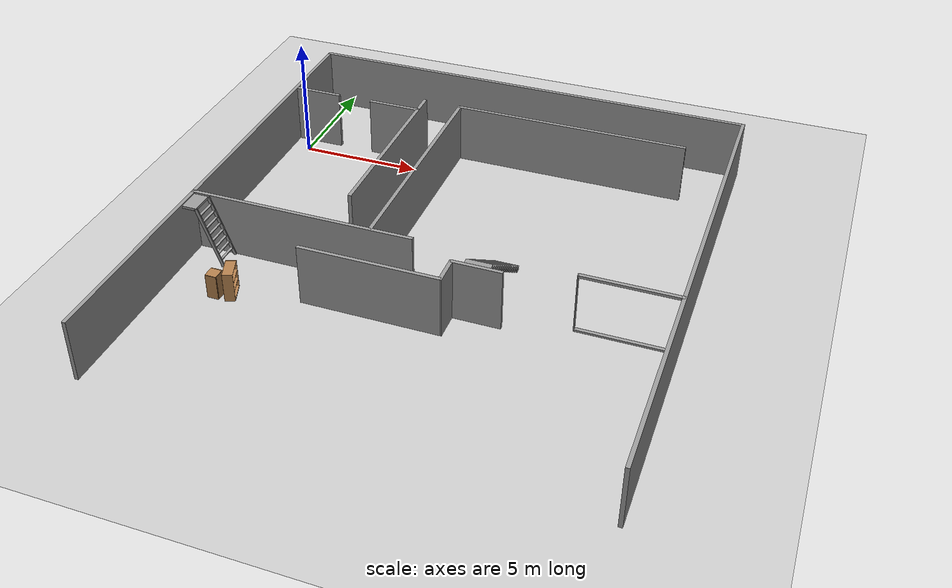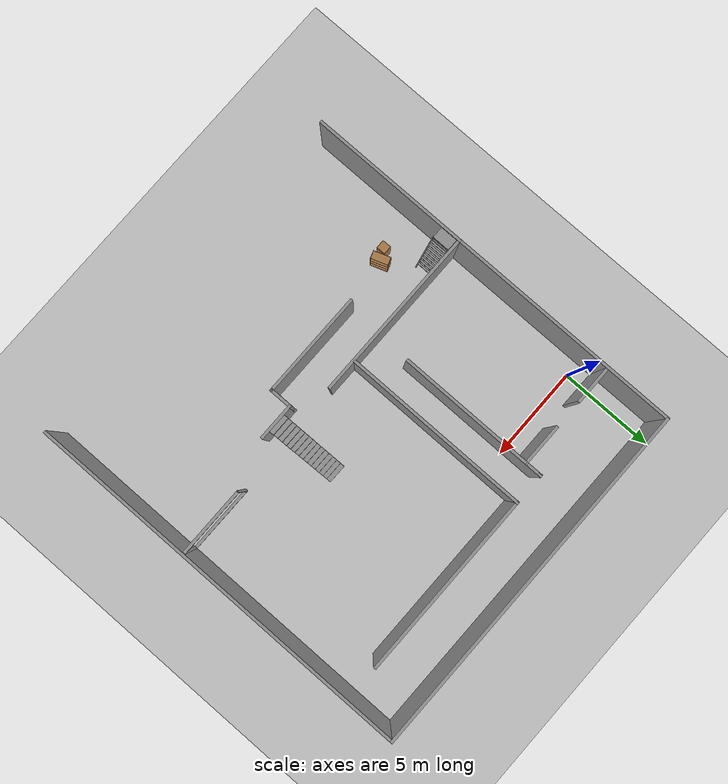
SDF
<sdf version="1.6">
 <world name="default">
  <light name="sun" type="directional">
   <pose>0 0 10 0 -0 0</pose>
   <diffuse>0.8 0.8 0.8 1</diffuse>
   <specular>0.2 0.2 0.2 1</specular>
   <attenuation>
    <range>1000</range>
    <constant>0.9</constant>
    <linear>0.01</linear>
    <quadratic>0.001</quadratic>
   </attenuation>
   <direction>-0.5 0.1 -0.9</direction>
  </light>
  <model name="ground_plane">
   <static>1</static>
   <link name="link">
    <collision name="collision">
     <geometry><plane><normal>0 0 1</normal><size>100 100</size></plane></geometry>
     <surface><friction><ode><mu>100</mu><mu2>50</mu2></ode></friction></surface>
    </collision>
    <visual name="visual">
     <cast_shadows>0</cast_shadows>
     <geometry><plane><normal>0 0 1</normal><size>100 100</size></plane></geometry>
     <material>
      <script><uri>file://media/materials/scripts/gazebo.material</uri><name>Gazebo/Grey</name></script>
     </material>
    </visual>
   </link>
  </model>
  <gravity>0 0 -9.8</gravity>
  <magnetic_field>6e-06 2.3e-05 -4.2e-05</magnetic_field>
  <atmosphere type="adiabatic"/>
  <physics name="default_physics" default="0" type="ode">
   <max_step_size>0.001</max_step_size>
   <real_time_factor>1</real_time_factor>
   <real_time_update_rate>1000</real_time_update_rate>
  </physics>
  <scene><ambient>0.4 0.4 0.4 1</ambient><background>0.7 0.7 0.7 1</background><shadows>1</shadows></scene>
  <audio><device>default</device></audio>
  <spherical_coordinates>
   <surface_model>EARTH_WGS84</surface_model>
   <latitude_deg>0</latitude_deg>
   <longitude_deg>0</longitude_deg>
   <elevation>0</elevation>
   <heading_deg>0</heading_deg>
  </spherical_coordinates>
  <model name="me5413_hope_ending_2">
   <pose>8.58971 -6.00914 0 0 -0 0</pose>
   <link name="Stairs_0">
    <visual name="Stairs_0_Visual_0">
     <pose>2.28032 0.665501 0.083333 0 -0 0</pose>
     <geometry><box><size>1 0.233333 0.166667</size></box></geometry>
     <material>
      <script><uri>file://media/materials/scripts/gazebo.material</uri><name>Gazebo/Grey</name></script>
      <ambient>1 1 1 1</ambient>
     </material>
     <meta><layer>0</layer></meta>
    </visual>
    <collision name="Stairs_0_Collision_0">
     <geometry><box><size>1 0.233333 0.166667</size></box></geometry>
     <pose>2.28032 0.665501 0.083333 0 -0 0</pose>
    </collision>
    <visual name="Stairs_0_Visual_1">
     <pose>2.28032 0.432168 0.25 0 -0 0</pose>
     <geometry><box><size>1 0.233333 0.166667</size></box></geometry>
     <material>
      <script><uri>file://media/materials/scripts/gazebo.material</uri><name>Gazebo/Grey</name></script>
      <ambient>1 1 1 1</ambient>
     </material>
     <meta><layer>0</layer></meta>
    </visual>
    <collision name="Stairs_0_Collision_1">
     <geometry><box><size>1 0.233333 0.166667</size></box></geometry>
     <pose>2.28032 0.432168 0.25 0 -0 0</pose>
    </collision>
    <visual name="Stairs_0_Visual_2">
     <pose>2.28032 0.198834 0.416667 0 -0 0</pose>
     <geometry><box><size>1 0.233333 0.166667</size></box></geometry>
     <material>
      <script><uri>file://media/materials/scripts/gazebo.material</uri><name>Gazebo/Grey</name></script>
      <ambient>1 1 1 1</ambient>
     </material>
     <meta><layer>0</layer></meta>
    </visual>
    <collision name="Stairs_0_Collision_2">
     <geometry><box><size>1 0.233333 0.166667</size></box></geometry>
     <pose>2.28032 0.198834 0.416667 0 -0 0</pose>
    </collision>
    <visual name="Stairs_0_Visual_3">
     <pose>2.28032 -0.034499 0.583333 0 -0 0</pose>
     <geometry><box><size>1 0.233333 0.166667</size></box></geometry>
     <material>
      <script><uri>file://media/materials/scripts/gazebo.material</uri><name>Gazebo/Grey</name></script>
      <ambient>1 1 1 1</ambient>
     </material>
     <meta><layer>0</layer></meta>
    </visual>
    <collision name="Stairs_0_Collision_3">
     <geometry><box><size>1 0.233333 0.166667</size></box></geometry>
     <pose>2.28032 -0.034499 0.583333 0 -0 0</pose>
    </collision>
    <visual name="Stairs_0_Visual_4">
     <pose>2.28032 -0.267833 0.75 0 -0 0</pose>
     <geometry><box><size>1 0.233333 0.166667</size></box></geometry>
     <material>
      <script><uri>file://media/materials/scripts/gazebo.material</uri><name>Gazebo/Grey</name></script>
      <ambient>1 1 1 1</ambient>
     </material>
     <meta><layer>0</layer></meta>
    </visual>
    <collision name="Stairs_0_Collision_4">
     <geometry><box><size>1 0.233333 0.166667</size></box></geometry>
     <pose>2.28032 -0.267833 0.75 0 -0 0</pose>
    </collision>
    <visual name="Stairs_0_Visual_5">
     <pose>2.28032 -0.501166 0.916667 0 -0 0</pose>
     <geometry><box><size>1 0.233333 0.166667</size></box></geometry>
     <material>
      <script><uri>file://media/materials/scripts/gazebo.material</uri><name>Gazebo/Grey</name></script>
      <ambient>1 1 1 1</ambient>
     </material>
     <meta><layer>0</layer></meta>
    </visual>
    <collision name="Stairs_0_Collision_5">
     <geometry><box><size>1 0.233333 0.166667</size></box></geometry>
     <pose>2.28032 -0.501166 0.916667 0 -0 0</pose>
    </collision>
    <visual name="Stairs_0_Visual_6">
     <pose>2.28032 -0.734499 1.08333 0 -0 0</pose>
     <geometry><box><size>1 0.233333 0.166667</size></box></geometry>
     <material>
      <script><uri>file://media/materials/scripts/gazebo.material</uri><name>Gazebo/Grey</name></script>
      <ambient>1 1 1 1</ambient>
     </material>
     <meta><layer>0</layer></meta>
    </visual>
    <collision name="Stairs_0_Collision_6">
     <geometry><box><size>1 0.233333 0.166667</size></box></geometry>
     <pose>2.28032 -0.734499 1.08333 0 -0 0</pose>
    </collision>
    <visual name="Stairs_0_Visual_7">
     <pose>2.28032 -0.967833 1.25 0 -0 0</pose>
     <geometry><box><size>1 0.233333 0.166667</size></box></geometry>
     <material>
      <script><uri>file://media/materials/scripts/gazebo.material</uri><name>Gazebo/Grey</name></script>
      <ambient>1 1 1 1</ambient>
     </material>
     <meta><layer>0</layer></meta>
    </visual>
    <collision name="Stairs_0_Collision_7">
     <geometry><box><size>1 0.233333 0.166667</size></box></geometry>
     <pose>2.28032 -0.967833 1.25 0 -0 0</pose>
    </collision>
    <visual name="Stairs_0_Visual_8">
     <pose>2.28032 -1.20117 1.41667 0 -0 0</pose>
     <geometry><box><size>1 0.233333 0.166667</size></box></geometry>
     <material>
      <script><uri>file://media/materials/scripts/gazebo.material</uri><name>Gazebo/Grey</name></script>
      <ambient>1 1 1 1</ambient>
     </material>
     <meta><layer>0</layer></meta>
    </visual>
    <collision name="Stairs_0_Collision_8">
     <geometry><box><size>1 0.233333 0.166667</size></box></geometry>
     <pose>2.28032 -1.20117 1.41667 0 -0 0</pose>
    </collision>
    <visual name="Stairs_0_Visual_9">
     <pose>2.28032 -1.4345 1.58333 0 -0 0</pose>
     <geometry><box><size>1 0.233333 0.166667</size></box></geometry>
     <material>
      <script><uri>file://media/materials/scripts/gazebo.material</uri><name>Gazebo/Grey</name></script>
      <ambient>1 1 1 1</ambient>
     </material>
     <meta><layer>0</layer></meta>
    </visual>
    <collision name="Stairs_0_Collision_9">
     <geometry><box><size>1 0.233333 0.166667</size></box></geometry>
     <pose>2.28032 -1.4345 1.58333 0 -0 0</pose>
    </collision>
    <visual name="Stairs_0_Visual_10">
     <pose>2.28032 -1.66783 1.75 0 -0 0</pose>
     <geometry><box><size>1 0.233333 0.166667</size></box></geometry>
     <material>
      <script><uri>file://media/materials/scripts/gazebo.material</uri><name>Gazebo/Grey</name></script>
      <ambient>1 1 1 1</ambient>
     </material>
     <meta><layer>0</layer></meta>
    </visual>
    <collision name="Stairs_0_Collision_10">
     <geometry><box><size>1 0.233333 0.166667</size></box></geometry>
     <pose>2.28032 -1.66783 1.75 0 -0 0</pose>
    </collision>
    <visual name="Stairs_0_Visual_11">
     <pose>2.28032 -1.90117 1.91667 0 -0 0</pose>
     <geometry><box><size>1 0.233333 0.166667</size></box></geometry>
     <material>
      <script><uri>file://media/materials/scripts/gazebo.material</uri><name>Gazebo/Grey</name></script>
      <ambient>1 1 1 1</ambient>
     </material>
     <meta><layer>0</layer></meta>
    </visual>
    <collision name="Stairs_0_Collision_11">
     <geometry><box><size>1 0.233333 0.166667</size></box></geometry>
     <pose>2.28032 -1.90117 1.91667 0 -0 0</pose>
    </collision>
    <visual name="Stairs_0_Visual_12">
     <pose>2.28032 -2.1345 2.08333 0 -0 0</pose>
     <geometry><box><size>1 0.233333 0.166667</size></box></geometry>
     <material>
      <script><uri>file://media/materials/scripts/gazebo.material</uri><name>Gazebo/Grey</name></script>
      <ambient>1 1 1 1</ambient>
     </material>
     <meta><layer>0</layer></meta>
    </visual>
    <collision name="Stairs_0_Collision_12">
     <geometry><box><size>1 0.233333 0.166667</size></box></geometry>
     <pose>2.28032 -2.1345 2.08333 0 -0 0</pose>
    </collision>
    <visual name="Stairs_0_Visual_13">
     <pose>2.28032 -2.36783 2.25 0 -0 0</pose>
     <geometry><box><size>1 0.233333 0.166667</size></box></geometry>
     <material>
      <script><uri>file://media/materials/scripts/gazebo.material</uri><name>Gazebo/Grey</name></script>
      <ambient>1 1 1 1</ambient>
     </material>
     <meta><layer>0</layer></meta>
    </visual>
    <collision name="Stairs_0_Collision_13">
     <geometry><box><size>1 0.233333 0.166667</size></box></geometry>
     <pose>2.28032 -2.36783 2.25 0 -0 0</pose>
    </collision>
    <visual name="Stairs_0_Visual_14">
     <pose>2.28032 -2.60117 2.41667 0 -0 0</pose>
     <geometry><box><size>1 0.233333 0.166667</size></box></geometry>
     <material>
      <script><uri>file://media/materials/scripts/gazebo.material</uri><name>Gazebo/Grey</name></script>
      <ambient>1 1 1 1</ambient>
     </material>
     <meta><layer>0</layer></meta>
    </visual>
    <collision name="Stairs_0_Collision_14">
     <geometry><box><size>1 0.233333 0.166667</size></box></geometry>
     <pose>2.28032 -2.60117 2.41667 0 -0 0</pose>
    </collision>
   </link>
   <link name="Wall_100">
    <collision name="Wall_100_Collision">
     <geometry><box><size>8.5 0.15 2.5</size></box></geometry>
     <pose>0 0 1.25 0 -0 0</pose>
    </collision>
    <visual name="Wall_100_Visual">
     <pose>0 0 1.25 0 -0 0</pose>
     <geometry><box><size>8.5 0.15 2.5</size></box></geometry>
     <material>
      <script><uri>file://media/materials/scripts/gazebo.material</uri><name>Gazebo/Grey</name></script>
      <ambient>1 1 1 1</ambient>
     </material>
     <meta><layer>0</layer></meta>
    </visual>
    <pose>-9.425 -6.175 0 0 -0 -1.5708</pose>
   </link>
   <link name="Wall_105">
    <collision name="Wall_105_Collision">
     <geometry><box><size>9.75 0.15 2.5</size></box></geometry>
     <pose>0 0 1.25 0 -0 0</pose>
    </collision>
    <visual name="Wall_105_Visual">
     <pose>0 0 1.25 0 -0 0</pose>
     <geometry><box><size>9.75 0.15 2.5</size></box></geometry>
     <material>
      <script><uri>file://media/materials/scripts/gazebo.material</uri><name>Gazebo/Grey</name></script>
      <ambient>1 1 1 1</ambient>
     </material>
     <meta><layer>0</layer></meta>
    </visual>
    <pose>2.675 7.7 0 0 -0 0</pose>
   </link>
   <link name="Wall_107">
    <collision name="Wall_107_Collision">
     <geometry><box><size>9.75 0.15 2.5</size></box></geometry>
     <pose>0 0 1.25 0 -0 0</pose>
    </collision>
    <visual name="Wall_107_Visual">
     <pose>0 0 1.25 0 -0 0</pose>
     <geometry><box><size>9.75 0.15 2.5</size></box></geometry>
     <material>
      <script><uri>file://media/materials/scripts/gazebo.material</uri><name>Gazebo/Grey</name></script>
      <ambient>1 1 1 1</ambient>
     </material>
     <meta><layer>0</layer></meta>
    </visual>
    <pose>-2.125 2.9 0 0 -0 -1.5708</pose>
   </link>
   <link name="Wall_114">
    <collision name="Wall_114_Collision">
     <geometry><box><size>8 0.15 2.5</size></box></geometry>
     <pose>0 0 1.25 0 -0 0</pose>
    </collision>
    <visual name="Wall_114_Visual">
     <pose>0 0 1.25 0 -0 0</pose>
     <geometry><box><size>8 0.15 2.5</size></box></geometry>
     <material>
      <script><uri>file://media/materials/scripts/gazebo.material</uri><name>Gazebo/Grey</name></script>
      <ambient>1 1 1 1</ambient>
     </material>
     <meta><layer>0</layer></meta>
    </visual>
    <pose>-3.725 3.775 0 0 -0 -1.5708</pose>
   </link>
   <link name="Wall_117">
    <collision name="Wall_117_Collision">
     <geometry><box><size>1 0.15 2.5</size></box></geometry>
     <pose>0 0 1.25 0 -0 0</pose>
    </collision>
    <visual name="Wall_117_Visual">
     <pose>0 0 1.25 0 -0 0</pose>
     <geometry><box><size>1 0.15 2.5</size></box></geometry>
     <material>
      <script><uri>file://media/materials/scripts/gazebo.material</uri><name>Gazebo/Grey</name></script>
      <ambient>1 1 1 1</ambient>
     </material>
     <meta><layer>0</layer></meta>
    </visual>
    <pose>-3.725 7.275 0 0 -0 -1.5708</pose>
   </link>
   <link name="Wall_118">
    <collision name="Wall_118_Collision">
     <geometry><box><size>2.25 0.15 2.5</size></box></geometry>
     <pose>0 0 1.25 0 -0 0</pose>
    </collision>
    <visual name="Wall_118_Visual">
     <pose>0 0 1.25 0 -0 0</pose>
     <geometry><box><size>2.25 0.15 2.5</size></box></geometry>
     <material>
      <script><uri>file://media/materials/scripts/gazebo.material</uri><name>Gazebo/Grey</name></script>
      <ambient>1 1 1 1</ambient>
     </material>
     <meta><layer>0</layer></meta>
    </visual>
    <pose>-4.775 6.85 0 0 -0 3.14159</pose>
   </link>
   <link name="Wall_120">
    <collision name="Wall_120_Collision">
     <geometry><box><size>2 0.15 2.5</size></box></geometry>
     <pose>0 0 1.25 0 -0 0</pose>
    </collision>
    <visual name="Wall_120_Visual">
     <pose>0 0 1.25 0 -0 0</pose>
     <geometry><box><size>2 0.15 2.5</size></box></geometry>
     <material>
      <script><uri>file://media/materials/scripts/gazebo.material</uri><name>Gazebo/Grey</name></script>
      <ambient>1 1 1 1</ambient>
     </material>
     <meta><layer>0</layer></meta>
    </visual>
    <pose>-8.35 6.85 0 0 -0 3.14159</pose>
   </link>
   <link name="Wall_125">
    <collision name="Wall_125_Collision">
     <geometry><box><size>2 0.15 2.5</size></box></geometry>
     <pose>0 0 1.25 0 -0 0</pose>
    </collision>
    <visual name="Wall_125_Visual">
     <pose>0 0 1.25 0 -0 0</pose>
     <geometry><box><size>2 0.15 2.5</size></box></geometry>
     <material>
      <script><uri>file://media/materials/scripts/gazebo.material</uri><name>Gazebo/Grey</name></script>
      <ambient>1 1 1 1</ambient>
     </material>
     <meta><layer>0</layer></meta>
    </visual>
    <pose>2.25 -2.79196 0 0 -0 0</pose>
   </link>
   <link name="Wall_54">
    <pose>7.57504 -1.99775 0 0 -0 0</pose>
    <visual name="Wall_54_Visual_0">
     <pose>-1.85719 0 1.25 0 -0 0</pose>
     <geometry><box><size>0.03563 0.15 2.5</size></box></geometry>
     <material>
      <script><uri>file://media/materials/scripts/gazebo.material</uri><name>Gazebo/Grey</name></script>
      <ambient>1 1 1 1</ambient>
     </material>
     <meta><layer>0</layer></meta>
    </visual>
    <collision name="Wall_54_Collision_0">
     <geometry><box><size>0.03563 0.15 2.5</size></box></geometry>
     <pose>-1.85719 0 1.25 0 -0 0</pose>
    </collision>
    <visual name="Wall_54_Visual_1">
     <pose>0.017815 0 0.04 0 -0 0</pose>
     <geometry><box><size>3.71437 0.15 0.08</size></box></geometry>
     <material>
      <script><uri>file://media/materials/scripts/gazebo.material</uri><name>Gazebo/Grey</name></script>
      <ambient>1 1 1 1</ambient>
     </material>
     <meta><layer>0</layer></meta>
    </visual>
    <collision name="Wall_54_Collision_1">
     <geometry><box><size>3.71437 0.15 0.08</size></box></geometry>
     <pose>0.017815 0 0.04 0 -0 0</pose>
    </collision>
    <visual name="Wall_54_Visual_2">
     <pose>1.81282 0 1.29 0 -0 0</pose>
     <geometry><box><size>0.12437 0.15 2.42</size></box></geometry>
     <material>
      <script><uri>file://media/materials/scripts/gazebo.material</uri><name>Gazebo/Grey</name></script>
      <ambient>1 1 1 1</ambient>
     </material>
     <meta><layer>0</layer></meta>
    </visual>
    <collision name="Wall_54_Collision_2">
     <geometry><box><size>0.12437 0.15 2.42</size></box></geometry>
     <pose>1.81282 0 1.29 0 -0 0</pose>
    </collision>
    <visual name="Wall_54_Visual_3">
     <pose>-0.04437 0 2.45 0 -0 0</pose>
     <geometry><box><size>3.59 0.15 0.1</size></box></geometry>
     <material>
      <script><uri>file://media/materials/scripts/gazebo.material</uri><name>Gazebo/Grey</name></script>
      <ambient>1 1 1 1</ambient>
     </material>
     <meta><layer>0</layer></meta>
    </visual>
    <collision name="Wall_54_Collision_3">
     <geometry><box><size>3.59 0.15 0.1</size></box></geometry>
     <pose>-0.04437 0 2.45 0 -0 0</pose>
    </collision>
   </link>
   <link name="Wall_60">
    <collision name="Wall_60_Collision">
     <geometry><box><size>1.25 0.15 2.5</size></box></geometry>
     <pose>0 0 1.25 0 -0 0</pose>
    </collision>
    <visual name="Wall_60_Visual">
     <pose>0 0 1.25 0 -0 0</pose>
     <geometry><box><size>1.25 0.15 2.5</size></box></geometry>
     <material>
      <script><uri>file://media/materials/scripts/gazebo.material</uri><name>Gazebo/Grey</name></script>
      <ambient>1 1 1 1</ambient>
     </material>
     <meta><layer>0</layer></meta>
    </visual>
    <pose>1.325 -3.34196 0 0 -0 -1.5708</pose>
   </link>
   <link name="Wall_61">
    <collision name="Wall_61_Collision">
     <geometry><box><size>5.5 0.15 2.5</size></box></geometry>
     <pose>0 0 1.25 0 -0 0</pose>
    </collision>
    <visual name="Wall_61_Visual">
     <pose>0 0 1.25 0 -0 0</pose>
     <geometry><box><size>5.5 0.15 2.5</size></box></geometry>
     <material>
      <script><uri>file://media/materials/scripts/gazebo.material</uri><name>Gazebo/Grey</name></script>
      <ambient>1 1 1 1</ambient>
     </material>
     <meta><layer>0</layer></meta>
    </visual>
    <pose>-1.40201 -3.89196 0 0 -0 3.14159</pose>
   </link>
   <link name="Wall_92">
    <collision name="Wall_92_Collision">
     <geometry><box><size>12.5 0.15 2.5</size></box></geometry>
     <pose>0 0 1.25 0 -0 0</pose>
    </collision>
    <visual name="Wall_92_Visual">
     <pose>0 0 1.25 0 -0 0</pose>
     <geometry><box><size>12.5 0.15 2.5</size></box></geometry>
     <material>
      <script><uri>file://media/materials/scripts/gazebo.material</uri><name>Gazebo/Grey</name></script>
      <ambient>1 1 1 1</ambient>
     </material>
     <meta><layer>0</layer></meta>
    </visual>
    <pose>-9.425 4.175 0 0 -0 1.5708</pose>
   </link>
   <link name="Wall_93">
    <collision name="Wall_93_Collision">
     <geometry><box><size>19 0.15 2.5</size></box></geometry>
     <pose>0 0 1.25 0 -0 0</pose>
    </collision>
    <visual name="Wall_93_Visual">
     <pose>0 0 1.25 0 -0 0</pose>
     <geometry><box><size>19 0.15 2.5</size></box></geometry>
     <material>
      <script><uri>file://media/materials/scripts/gazebo.material</uri><name>Gazebo/Grey</name></script>
      <ambient>1 1 1 1</ambient>
     </material>
     <meta><layer>0</layer></meta>
    </visual>
    <pose>-1e-06 10.35 0 0 -0 0</pose>
   </link>
   <link name="Wall_94">
    <collision name="Wall_94_Collision">
     <geometry><box><size>20.75 0.15 2.5</size></box></geometry>
     <pose>0 0 1.25 0 -0 0</pose>
    </collision>
    <visual name="Wall_94_Visual">
     <pose>0 0 1.25 0 -0 0</pose>
     <geometry><box><size>20.75 0.15 2.5</size></box></geometry>
     <material>
      <script><uri>file://media/materials/scripts/gazebo.material</uri><name>Gazebo/Grey</name></script>
      <ambient>1 1 1 1</ambient>
     </material>
     <meta><layer>0</layer></meta>
    </visual>
    <pose>9.425 0.05 0 0 -0 -1.5708</pose>
   </link>
   <link name="Wall_98">
    <collision name="Wall_98_Collision">
     <geometry><box><size>9.06495 0.15 2.5</size></box></geometry>
     <pose>0 0 1.25 0 -0 0</pose>
    </collision>
    <visual name="Wall_98_Visual">
     <pose>0 0 1.25 0 -0 0</pose>
     <geometry><box><size>9.06495 0.15 2.5</size></box></geometry>
     <material>
      <script><uri>file://media/materials/scripts/gazebo.material</uri><name>Gazebo/Grey</name></script>
      <ambient>1 1 1 1</ambient>
     </material>
     <meta><layer>0</layer></meta>
    </visual>
    <pose>-4.96753 -2 0 0 -0 3.14159</pose>
   </link>
   <static>1</static>
  </model>
  <model name="ladder_70deg_0rails">
   <static>1</static>
   <link name="step0">
    <pose>0 0.097059 0.266667 0 -0 0</pose>
    <inertial>
     <mass>9.75482</mass>
     <inertia>
      <ixx>0.00957124</ixx>
      <iyy>0.65963</iyy>
      <izz>0.666842</izz>
      <ixy>0</ixy>
      <ixz>0</ixz>
      <iyz>0</iyz>
     </inertia>
    </inertial>
    <collision name="collision"><geometry><box><size>0.9 0.1016 0.0381</size></box></geometry></collision>
    <visual name="visual">
     <geometry><box><size>0.9 0.1016 0.0381</size></box></geometry>
     <material>
      <script><uri>file://media/materials/scripts/gazebo.material</uri><name>Gazebo/Grey</name></script>
     </material>
    </visual>
   </link>
   <link name="step1">
    <pose>0 0.194117 0.533333 0 -0 0</pose>
    <inertial>
     <mass>9.75482</mass>
     <inertia>
      <ixx>0.00957124</ixx>
      <iyy>0.65963</iyy>
      <izz>0.666842</izz>
      <ixy>0</ixy>
      <ixz>0</ixz>
      <iyz>0</iyz>
     </inertia>
    </inertial>
    <collision name="collision"><geometry><box><size>0.9 0.1016 0.0381</size></box></geometry></collision>
    <visual name="visual">
     <geometry><box><size>0.9 0.1016 0.0381</size></box></geometry>
     <material>
      <script><uri>file://media/materials/scripts/gazebo.material</uri><name>Gazebo/Grey</name></script>
     </material>
    </visual>
   </link>
   <link name="step2">
    <pose>0 0.291176 0.8 0 -0 0</pose>
    <inertial>
     <mass>9.75482</mass>
     <inertia>
      <ixx>0.00957124</ixx>
      <iyy>0.65963</iyy>
      <izz>0.666842</izz>
      <ixy>0</ixy>
      <ixz>0</ixz>
      <iyz>0</iyz>
     </inertia>
    </inertial>
    <collision name="collision"><geometry><box><size>0.9 0.1016 0.0381</size></box></geometry></collision>
    <visual name="visual">
     <geometry><box><size>0.9 0.1016 0.0381</size></box></geometry>
     <material>
      <script><uri>file://media/materials/scripts/gazebo.material</uri><name>Gazebo/Grey</name></script>
     </material>
    </visual>
   </link>
   <link name="step3">
    <pose>0 0.388235 1.06667 0 -0 0</pose>
    <inertial>
     <mass>9.75482</mass>
     <inertia>
      <ixx>0.00957124</ixx>
      <iyy>0.65963</iyy>
      <izz>0.666842</izz>
      <ixy>0</ixy>
      <ixz>0</ixz>
      <iyz>0</iyz>
     </inertia>
    </inertial>
    <collision name="collision"><geometry><box><size>0.9 0.1016 0.0381</size></box></geometry></collision>
    <visual name="visual">
     <geometry><box><size>0.9 0.1016 0.0381</size></box></geometry>
     <material>
      <script><uri>file://media/materials/scripts/gazebo.material</uri><name>Gazebo/Grey</name></script>
     </material>
    </visual>
   </link>
   <link name="step4">
    <pose>0 0.485294 1.33333 0 -0 0</pose>
    <inertial>
     <mass>9.75482</mass>
     <inertia>
      <ixx>0.00957124</ixx>
      <iyy>0.65963</iyy>
      <izz>0.666842</izz>
      <ixy>0</ixy>
      <ixz>0</ixz>
      <iyz>0</iyz>
     </inertia>
    </inertial>
    <collision name="collision"><geometry><box><size>0.9 0.1016 0.0381</size></box></geometry></collision>
    <visual name="visual">
     <geometry><box><size>0.9 0.1016 0.0381</size></box></geometry>
     <material>
      <script><uri>file://media/materials/scripts/gazebo.material</uri><name>Gazebo/Grey</name></script>
     </material>
    </visual>
   </link>
   <link name="step5">
    <pose>0 0.582352 1.6 0 -0 0</pose>
    <inertial>
     <mass>9.75482</mass>
     <inertia>
      <ixx>0.00957124</ixx>
      <iyy>0.65963</iyy>
      <izz>0.666842</izz>
      <ixy>0</ixy>
      <ixz>0</ixz>
      <iyz>0</iyz>
     </inertia>
    </inertial>
    <collision name="collision"><geometry><box><size>0.9 0.1016 0.0381</size></box></geometry></collision>
    <visual name="visual">
     <geometry><box><size>0.9 0.1016 0.0381</size></box></geometry>
     <material>
      <script><uri>file://media/materials/scripts/gazebo.material</uri><name>Gazebo/Grey</name></script>
     </material>
    </visual>
   </link>
   <link name="step6">
    <pose>0 0.679411 1.86667 0 -0 0</pose>
    <inertial>
     <mass>9.75482</mass>
     <inertia>
      <ixx>0.00957124</ixx>
      <iyy>0.65963</iyy>
      <izz>0.666842</izz>
      <ixy>0</ixy>
      <ixz>0</ixz>
      <iyz>0</iyz>
     </inertia>
    </inertial>
    <collision name="collision"><geometry><box><size>0.9 0.1016 0.0381</size></box></geometry></collision>
    <visual name="visual">
     <geometry><box><size>0.9 0.1016 0.0381</size></box></geometry>
     <material>
      <script><uri>file://media/materials/scripts/gazebo.material</uri><name>Gazebo/Grey</name></script>
     </material>
    </visual>
   </link>
   <link name="step7">
    <pose>0 0.77647 2.13333 0 -0 0</pose>
    <inertial>
     <mass>9.75482</mass>
     <inertia>
      <ixx>0.00957124</ixx>
      <iyy>0.65963</iyy>
      <izz>0.666842</izz>
      <ixy>0</ixy>
      <ixz>0</ixz>
      <iyz>0</iyz>
     </inertia>
    </inertial>
    <collision name="collision"><geometry><box><size>0.9 0.1016 0.0381</size></box></geometry></collision>
    <visual name="visual">
     <geometry><box><size>0.9 0.1016 0.0381</size></box></geometry>
     <material>
      <script><uri>file://media/materials/scripts/gazebo.material</uri><name>Gazebo/Grey</name></script>
     </material>
    </visual>
   </link>
   <link name="landing">
    <pose>0 1.17353 2.4 0 -0 0</pose>
    <inertial>
     <mass>57.6072</mass>
     <inertia><ixx>1.73518</ixx><iyy>3.89545</iyy><izz>5.6167</izz><ixy>0</ixy><ixz>0</ixz><iyz>0</iyz></inertia>
    </inertial>
    <collision name="collision"><geometry><box><size>0.9 0.6 0.1016</size></box></geometry></collision>
    <visual name="visual">
     <geometry><box><size>0.9 0.6 0.1016</size></box></geometry>
     <material>
      <script><uri>file://media/materials/scripts/gazebo.material</uri><name>Gazebo/Grey</name></script>
     </material>
    </visual>
   </link>
   <link name="left_side_wall">
    <pose>-0.45 0.436764 1.2 1.22173 -0 0</pose>
    <collision name="collision"><geometry><box><size>0.0508 2.63403 0.13</size></box></geometry></collision>
    <visual name="visual">
     <geometry><box><size>0.0508 2.63403 0.13</size></box></geometry>
     <material>
      <script><uri>file://media/materials/scripts/gazebo.material</uri><name>Gazebo/Grey</name></script>
     </material>
    </visual>
   </link>
   <link name="right_side_wall">
    <pose>0.45 0.436764 1.2 1.22173 -0 0</pose>
    <collision name="collision"><geometry><box><size>0.0508 2.63403 0.13</size></box></geometry></collision>
    <visual name="visual">
     <geometry><box><size>0.0508 2.63403 0.13</size></box></geometry>
     <material>
      <script><uri>file://media/materials/scripts/gazebo.material</uri><name>Gazebo/Grey</name></script>
     </material>
    </visual>
   </link>
   <pose>0.712754 -8.55987 0 0 -0 1.57</pose>
  </model>
  <model name="cabinet">
   <static>1</static>
   <link name="cabinet_bottom_plate">
    <inertial>
     <pose>0 0 -1 0 -0 0</pose>
     <inertia><ixx>2.05</ixx><ixy>0</ixy><ixz>0</ixz><iyy>2.05</iyy><iyz>0</iyz><izz>2.05</izz></inertia>
     <mass>25</mass>
    </inertial>
    <collision name="cabinet_bottom_plate_geom">
     <pose>0 0 0.01 0 -0 0</pose>
     <geometry><box><size>0.45 0.45 0.02</size></box></geometry>
    </collision>
    <visual name="cabinet_bottom_plate_geom_visual">
     <pose>0 0 0.01 0 -0 0</pose>
     <geometry><box><size>0.45 0.45 0.02</size></box></geometry>
     <material>
      <script><uri>file://media/materials/scripts/gazebo.material</uri><name>Gazebo/Wood</name></script>
     </material>
    </visual>
    <collision name="cabinet_bottom_plate_geom_cabinet_back_plate">
     <pose>0.235 0 0.51 0 -0 0</pose>
     <geometry><box><size>0.02 0.45 1.02</size></box></geometry>
    </collision>
    <visual name="cabinet_bottom_plate_geom_cabinet_back_plate_visual">
     <pose>0.235 0 0.51 0 -0 0</pose>
     <geometry><box><size>0.02 0.45 1.02</size></box></geometry>
     <material>
      <script><uri>file://media/materials/scripts/gazebo.material</uri><name>Gazebo/Wood</name></script>
     </material>
    </visual>
    <collision name="cabinet_bottom_plate_geom_cabinet_left_plate">
     <pose>0 0.235 0.51 0 -0 0</pose>
     <geometry><box><size>0.45 0.02 1.02</size></box></geometry>
    </collision>
    <visual name="cabinet_bottom_plate_geom_cabinet_left_plate_visual">
     <pose>0 0.235 0.51 0 -0 0</pose>
     <geometry><box><size>0.45 0.02 1.02</size></box></geometry>
     <material>
      <script><uri>file://media/materials/scripts/gazebo.material</uri><name>Gazebo/Wood</name></script>
     </material>
    </visual>
    <collision name="cabinet_bottom_plate_geom_cabinet_middle_plate">
     <pose>0 0 0.51 0 -0 0</pose>
     <geometry><box><size>0.45 0.45 0.02</size></box></geometry>
    </collision>
    <visual name="cabinet_bottom_plate_geom_cabinet_middle_plate_visual">
     <pose>0 0 0.51 0 -0 0</pose>
     <geometry><box><size>0.45 0.45 0.02</size></box></geometry>
     <material>
      <script><uri>file://media/materials/scripts/gazebo.material</uri><name>Gazebo/Wood</name></script>
     </material>
    </visual>
    <collision name="cabinet_bottom_plate_geom_cabinet_right_plate">
     <pose>0 -0.235 0.51 0 -0 0</pose>
     <geometry><box><size>0.45 0.02 1.02</size></box></geometry>
    </collision>
    <visual name="cabinet_bottom_plate_geom_cabinet_right_plate_visual">
     <pose>0 -0.235 0.51 0 -0 0</pose>
     <geometry><box><size>0.45 0.02 1.02</size></box></geometry>
     <material>
      <script><uri>file://media/materials/scripts/gazebo.material</uri><name>Gazebo/Wood</name></script>
     </material>
    </visual>
    <collision name="cabinet_bottom_plate_geom_cabinet_top_plate">
     <pose>0 0 1.01 0 -0 0</pose>
     <geometry><box><size>0.45 0.45 0.02</size></box></geometry>
    </collision>
    <visual name="cabinet_bottom_plate_geom_cabinet_top_plate_visual">
     <pose>0 0 1.01 0 -0 0</pose>
     <geometry><box><size>0.45 0.45 0.02</size></box></geometry>
     <material>
      <script><uri>file://media/materials/scripts/gazebo.material</uri><name>Gazebo/Wood</name></script>
     </material>
    </visual>
   </link>
   <pose>1.31076 -10.6484 0 0 -0 0</pose>
  </model>
  <model name="bookshelf">
   <static>1</static>
   <link name="link">
    <inertial><mass>1</mass></inertial>
    <collision name="back">
     <pose>0 0.005 0.6 0 -0 0</pose>
     <geometry><box><size>0.9 0.01 1.2</size></box></geometry>
    </collision>
    <visual name="visual1">
     <pose>0 0.005 0.6 0 -0 0</pose>
     <geometry><box><size>0.9 0.01 1.2</size></box></geometry>
     <material>
      <script><uri>file://media/materials/scripts/gazebo.material</uri><name>Gazebo/Wood</name></script>
     </material>
    </visual>
    <collision name="left_side">
     <pose>0.45 -0.195 0.6 0 -0 0</pose>
     <geometry><box><size>0.02 0.4 1.2</size></box></geometry>
    </collision>
    <visual name="visual2">
     <pose>0.45 -0.195 0.6 0 -0 0</pose>
     <geometry><box><size>0.02 0.4 1.2</size></box></geometry>
     <material>
      <script><uri>file://media/materials/scripts/gazebo.material</uri><name>Gazebo/Wood</name></script>
     </material>
    </visual>
    <collision name="right_side">
     <pose>-0.45 -0.195 0.6 0 -0 0</pose>
     <geometry><box><size>0.02 0.4 1.2</size></box></geometry>
    </collision>
    <visual name="visual3">
     <pose>-0.45 -0.195 0.6 0 -0 0</pose>
     <geometry><box><size>0.02 0.4 1.2</size></box></geometry>
     <material>
      <script><uri>file://media/materials/scripts/gazebo.material</uri><name>Gazebo/Wood</name></script>
     </material>
    </visual>
    <collision name="bottom">
     <pose>0 -0.195 0.03 0 -0 0</pose>
     <geometry><box><size>0.88 0.4 0.06</size></box></geometry>
    </collision>
    <visual name="visual4">
     <pose>0 -0.195 0.03 0 -0 0</pose>
     <geometry><box><size>0.88 0.4 0.06</size></box></geometry>
     <material>
      <script><uri>file://media/materials/scripts/gazebo.material</uri><name>Gazebo/Wood</name></script>
     </material>
    </visual>
    <collision name="top">
     <pose>0 -0.195 1.19 0 -0 0</pose>
     <geometry><box><size>0.88 0.4 0.02</size></box></geometry>
    </collision>
    <visual name="visual5">
     <pose>0 -0.195 1.19 0 -0 0</pose>
     <geometry><box><size>0.88 0.4 0.02</size></box></geometry>
     <material>
      <script><uri>file://media/materials/scripts/gazebo.material</uri><name>Gazebo/Wood</name></script>
     </material>
    </visual>
    <collision name="low_shelf">
     <pose>0 -0.195 0.43 0 -0 0</pose>
     <geometry><box><size>0.88 0.4 0.02</size></box></geometry>
    </collision>
    <visual name="visual6">
     <pose>0 -0.195 0.43 0 -0 0</pose>
     <geometry><box><size>0.88 0.4 0.02</size></box></geometry>
     <material>
      <script><uri>file://media/materials/scripts/gazebo.material</uri><name>Gazebo/Wood</name></script>
     </material>
    </visual>
    <collision name="high_shelf">
     <pose>0 -0.195 0.8 0 -0 0</pose>
     <geometry><box><size>0.88 0.4 0.02</size></box></geometry>
    </collision>
    <visual name="visual7">
     <pose>0 -0.195 0.8 0 -0 0</pose>
     <geometry><box><size>0.88 0.4 0.02</size></box></geometry>
     <material>
      <script><uri>file://media/materials/scripts/gazebo.material</uri><name>Gazebo/Wood</name></script>
     </material>
    </visual>
   </link>
   <pose>1.6528 -10.4577 0 0 -0 1.90828</pose>
  </model>
 </world>
</sdf>
